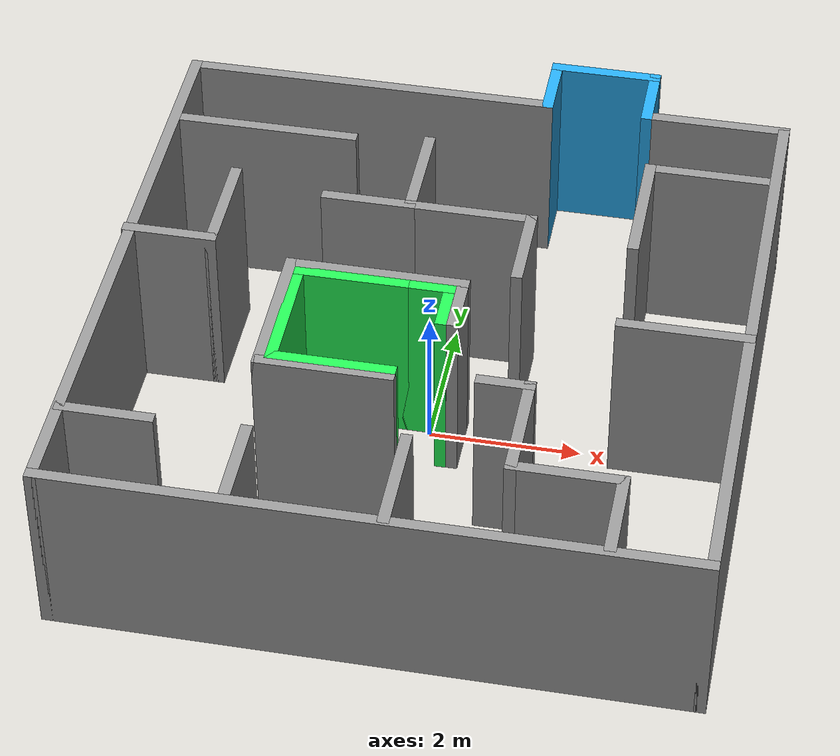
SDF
<?xml version='1.0'?>
<sdf version='1.7'>
  <model name='Floating_room_2'>
    <pose>-0.001612 0.444051 0 0 -0 0</pose>
    <link name='Wall_0'>
      <collision name='Wall_0_Collision'>
        <geometry>
          <box>
            <size>8.25 0.15 2.5</size>
          </box>
        </geometry>
        <pose>0 0 1.25 0 -0 0</pose>
      </collision>
      <visual name='Wall_0_Visual'>
        <pose>0 0 1.25 0 -0 0</pose>
        <geometry>
          <box>
            <size>8.25 0.15 2.5</size>
          </box>
        </geometry>
        <material>
          <script>
            <uri>file://media/materials/scripts/gazebo.material</uri>
            <name>Gazebo/Grey</name>
          </script>
          <ambient>1 1 1 1</ambient>
        </material>
        <meta>
          <layer>0</layer>
        </meta>
      </visual>
      <pose>-4.03596 -0.425 0 0 -0 -1.5708</pose>
    </link>
    <link name='Wall_1'>
      <collision name='Wall_1_Collision'>
        <geometry>
          <box>
            <size>8.25 0.15 2.5</size>
          </box>
        </geometry>
        <pose>0 0 1.25 0 -0 0</pose>
      </collision>
      <visual name='Wall_1_Visual'>
        <pose>0 0 1.25 0 -0 0</pose>
        <geometry>
          <box>
            <size>8.25 0.15 2.5</size>
          </box>
        </geometry>
        <material>
          <script>
            <uri>file://media/materials/scripts/gazebo.material</uri>
            <name>Gazebo/Grey</name>
          </script>
          <ambient>1 1 1 1</ambient>
        </material>
        <meta>
          <layer>0</layer>
        </meta>
      </visual>
      <pose>0.014044 -4.475 0 0 -0 0</pose>
    </link>
    <link name='Wall_10'>
      <collision name='Wall_10_Collision'>
        <geometry>
          <box>
            <size>1.75 0.15 2.5</size>
          </box>
        </geometry>
        <pose>0 0 1.25 0 -0 0</pose>
      </collision>
      <visual name='Wall_10_Visual'>
        <pose>0 0 1.25 0 -0 0</pose>
        <geometry>
          <box>
            <size>1.75 0.15 2.5</size>
          </box>
        </geometry>
        <material>
          <script>
            <uri>file://media/materials/scripts/gazebo.material</uri>
            <name>Gazebo/Grey</name>
          </script>
          <ambient>1 1 1 1</ambient>
        </material>
        <meta>
          <layer>0</layer>
        </meta>
      </visual>
      <pose>2.40321 1.72963 0 0 -0 -1.5708</pose>
    </link>
    <link name='Wall_12'>
      <collision name='Wall_12_Collision'>
        <geometry>
          <box>
            <size>1.75 0.15 2.5</size>
          </box>
        </geometry>
        <pose>0 0 1.25 0 -0 0</pose>
      </collision>
      <visual name='Wall_12_Visual'>
        <pose>0 0 1.25 0 -0 0</pose>
        <geometry>
          <box>
            <size>1.75 0.15 2.5</size>
          </box>
        </geometry>
        <material>
          <script>
            <uri>file://media/materials/scripts/gazebo.material</uri>
            <name>Gazebo/Grey</name>
          </script>
          <ambient>1 1 1 1</ambient>
        </material>
        <meta>
          <layer>0</layer>
        </meta>
      </visual>
      <pose>3.25611 -0.565019 0 0 -0 3.14159</pose>
    </link>
    <link name='Wall_14'>
      <collision name='Wall_14_Collision'>
        <geometry>
          <box>
            <size>1.5 0.15 2.5</size>
          </box>
        </geometry>
        <pose>0 0 1.25 0 -0 0</pose>
      </collision>
      <visual name='Wall_14_Visual'>
        <pose>0 0 1.25 0 -0 0</pose>
        <geometry>
          <box>
            <size>1.5 0.15 2.5</size>
          </box>
        </geometry>
        <material>
          <script>
            <uri>file://media/materials/scripts/gazebo.material</uri>
            <name>Gazebo/Grey</name>
          </script>
          <ambient>1 1 1 1</ambient>
        </material>
        <meta>
          <layer>0</layer>
        </meta>
      </visual>
      <pose>2.19086 -3.30259 0 0 -0 3.14159</pose>
    </link>
    <link name='Wall_16'>
      <collision name='Wall_16_Collision'>
        <geometry>
          <box>
            <size>1.25 0.15 2.5</size>
          </box>
        </geometry>
        <pose>0 0 1.25 0 -0 0</pose>
      </collision>
      <visual name='Wall_16_Visual'>
        <pose>0 0 1.25 0 -0 0</pose>
        <geometry>
          <box>
            <size>1.25 0.15 2.5</size>
          </box>
        </geometry>
        <material>
          <script>
            <uri>file://media/materials/scripts/gazebo.material</uri>
            <name>Gazebo/Grey</name>
          </script>
          <ambient>1 1 1 1</ambient>
        </material>
        <meta>
          <layer>0</layer>
        </meta>
      </visual>
      <pose>2.86586 -3.85259 0 0 -0 -1.5708</pose>
    </link>
    <link name='Wall_2'>
      <collision name='Wall_2_Collision'>
        <geometry>
          <box>
            <size>8.25 0.15 2.5</size>
          </box>
        </geometry>
        <pose>0 0 1.25 0 -0 0</pose>
      </collision>
      <visual name='Wall_2_Visual'>
        <pose>0 0 1.25 0 -0 0</pose>
        <geometry>
          <box>
            <size>8.25 0.15 2.5</size>
          </box>
        </geometry>
        <material>
          <script>
            <uri>file://media/materials/scripts/gazebo.material</uri>
            <name>Gazebo/Grey</name>
          </script>
          <ambient>1 1 1 1</ambient>
        </material>
        <meta>
          <layer>0</layer>
        </meta>
      </visual>
      <pose>4.06404 -0.425 0 0 -0 1.5708</pose>
    </link>
    <link name='Wall_20'>
      <collision name='Wall_20_Collision'>
        <geometry>
          <box>
            <size>1.25 0.15 2.5</size>
          </box>
        </geometry>
        <pose>0 0 1.25 0 -0 0</pose>
      </collision>
      <visual name='Wall_20_Visual'>
        <pose>0 0 1.25 0 -0 0</pose>
        <geometry>
          <box>
            <size>1.25 0.15 2.5</size>
          </box>
        </geometry>
        <material>
          <script>
            <uri>file://media/materials/scripts/gazebo.material</uri>
            <name>Gazebo/Grey</name>
          </script>
          <ambient>1 1 1 1</ambient>
        </material>
        <meta>
          <layer>0</layer>
        </meta>
      </visual>
      <pose>-3.46114 -3.30259 0 0 -0 0</pose>
    </link>
    <link name='Wall_22'>
      <collision name='Wall_22_Collision'>
        <geometry>
          <box>
            <size>1.25 0.15 2.5</size>
          </box>
        </geometry>
        <pose>0 0 1.25 0 -0 0</pose>
      </collision>
      <visual name='Wall_22_Visual'>
        <pose>0 0 1.25 0 -0 0</pose>
        <geometry>
          <box>
            <size>1.25 0.15 2.5</size>
          </box>
        </geometry>
        <material>
          <script>
            <uri>file://media/materials/scripts/gazebo.material</uri>
            <name>Gazebo/Grey</name>
          </script>
          <ambient>1 1 1 1</ambient>
        </material>
        <meta>
          <layer>0</layer>
        </meta>
      </visual>
      <pose>-1.70999 -3.83937 0 0 -0 -1.5708</pose>
    </link>
    <link name='Wall_24'>
      <collision name='Wall_24_Collision'>
        <geometry>
          <box>
            <size>1.25 0.15 2.5</size>
          </box>
        </geometry>
        <pose>0 0 1.25 0 -0 0</pose>
      </collision>
      <visual name='Wall_24_Visual'>
        <pose>0 0 1.25 0 -0 0</pose>
        <geometry>
          <box>
            <size>1.25 0.15 2.5</size>
          </box>
        </geometry>
        <material>
          <script>
            <uri>file://media/materials/scripts/gazebo.material</uri>
            <name>Gazebo/Grey</name>
          </script>
          <ambient>1 1 1 1</ambient>
        </material>
        <meta>
          <layer>0</layer>
        </meta>
      </visual>
      <pose>-3.51404 0.096231 0 0 -0 0</pose>
    </link>
    <link name='Wall_25'>
      <collision name='Wall_25_Collision'>
        <geometry>
          <box>
            <size>1.5 0.15 2.5</size>
          </box>
        </geometry>
        <pose>0 0 1.25 0 -0 0</pose>
      </collision>
      <visual name='Wall_25_Visual'>
        <pose>0 0 1.25 0 -0 0</pose>
        <geometry>
          <box>
            <size>1.5 0.15 2.5</size>
          </box>
        </geometry>
        <material>
          <script>
            <uri>file://media/materials/scripts/gazebo.material</uri>
            <name>Gazebo/Grey</name>
          </script>
          <ambient>1 1 1 1</ambient>
        </material>
        <meta>
          <layer>0</layer>
        </meta>
      </visual>
      <pose>-2.96404 0.771231 0 0 -0 1.5708</pose>
    </link>
    <link name='Wall_27'>
      <collision name='Wall_27_Collision'>
        <geometry>
          <box>
            <size>2.5 0.15 2.5</size>
          </box>
        </geometry>
        <pose>0 0 1.25 0 -0 0</pose>
      </collision>
      <visual name='Wall_27_Visual'>
        <pose>0 0 1.25 0 -0 0</pose>
        <geometry>
          <box>
            <size>2.5 0.15 2.5</size>
          </box>
        </geometry>
        <material>
          <script>
            <uri>file://media/materials/scripts/gazebo.material</uri>
            <name>Gazebo/Grey</name>
          </script>
          <ambient>1 1 1 1</ambient>
        </material>
        <meta>
          <layer>0</layer>
        </meta>
      </visual>
      <pose>-2.78324 2.45028 0 0 -0 0</pose>
    </link>
    <link name='Wall_3'>
      <collision name='Wall_3_Collision'>
        <geometry>
          <box>
            <size>2 0.15 2.5</size>
          </box>
        </geometry>
        <pose>0 0 1.25 0 -0 0</pose>
      </collision>
      <visual name='Wall_3_Visual'>
        <pose>0 0 1.25 0 -0 0</pose>
        <geometry>
          <box>
            <size>2 0.15 2.5</size>
          </box>
        </geometry>
        <material>
          <script>
            <uri>file://media/materials/scripts/gazebo.material</uri>
            <name>Gazebo/Grey</name>
          </script>
          <ambient>1 1 1 1</ambient>
        </material>
        <meta>
          <layer>0</layer>
        </meta>
      </visual>
      <pose>3.13904 3.625 0 0 -0 3.14159</pose>
    </link>
    <link name='Wall_36'>
      <collision name='Wall_36_Collision'>
        <geometry>
          <box>
            <size>1.5 0.15 2.5</size>
          </box>
        </geometry>
        <pose>0 0 1.25 0 -0 0</pose>
      </collision>
      <visual name='Wall_36_Visual'>
        <pose>0 0 1.25 0 -0 0</pose>
        <geometry>
          <box>
            <size>1.5 0.15 2.5</size>
          </box>
        </geometry>
        <material>
          <script>
            <uri>file://media/materials/scripts/gazebo.material</uri>
            <name>Gazebo/Grey</name>
          </script>
          <ambient>1 1 1 1</ambient>
        </material>
        <meta>
          <layer>0</layer>
        </meta>
      </visual>
      <pose>-0.572644 1.88108 0 0 -0 -1.5708</pose>
    </link>
    <link name='Wall_37'>
      <collision name='Wall_37_Collision'>
        <geometry>
          <box>
            <size>1.75 0.15 2.5</size>
          </box>
        </geometry>
        <pose>0 0 1.25 0 -0 0</pose>
      </collision>
      <visual name='Wall_37_Visual'>
        <pose>0 0 1.25 0 -0 0</pose>
        <geometry>
          <box>
            <size>1.75 0.15 2.5</size>
          </box>
        </geometry>
        <material>
          <script>
            <uri>file://media/materials/scripts/gazebo.material</uri>
            <name>Gazebo/Grey</name>
          </script>
          <ambient>1 1 1 1</ambient>
        </material>
        <meta>
          <layer>0</layer>
        </meta>
      </visual>
      <pose>0.227356 1.20608 0 0 -0 0</pose>
    </link>
    <link name='Wall_38'>
      <collision name='Wall_38_Collision'>
        <geometry>
          <box>
            <size>1.25 0.15 2.5</size>
          </box>
        </geometry>
        <pose>0 0 1.25 0 -0 0</pose>
      </collision>
      <visual name='Wall_38_Visual'>
        <pose>0 0 1.25 0 -0 0</pose>
        <geometry>
          <box>
            <size>1.25 0.15 2.5</size>
          </box>
        </geometry>
        <material>
          <script>
            <uri>file://media/materials/scripts/gazebo.material</uri>
            <name>Gazebo/Grey</name>
          </script>
          <ambient>1 1 1 1</ambient>
        </material>
        <meta>
          <layer>0</layer>
        </meta>
      </visual>
      <pose>1.02736 0.656081 0 0 -0 -1.5708</pose>
    </link>
    <link name='Wall_4'>
      <collision name='Wall_4_Collision'>
        <geometry>
          <box>
            <size>1 0.15 2.5</size>
          </box>
        </geometry>
        <pose>0 0 1.25 0 -0 0</pose>
      </collision>
      <visual name='Wall_4_Visual'>
        <pose>0 0 1.25 0 -0 0</pose>
        <geometry>
          <box>
            <size>1 0.15 2.5</size>
          </box>
        </geometry>
        <material>
          <script>
            <uri>file://media/materials/scripts/gazebo.material</uri>
            <name>Gazebo/Grey</name>
          </script>
          <ambient>0.152941 0.67451 0.945098 1</ambient>
        </material>
        <meta>
          <layer>0</layer>
        </meta>
      </visual>
      <pose>2.21404 4.05 0 0 -0 1.5708</pose>
    </link>
    <link name='Wall_40'>
      <collision name='Wall_40_Collision'>
        <geometry>
          <box>
            <size>1.25 0.15 2.5</size>
          </box>
        </geometry>
        <pose>0 0 1.25 0 -0 0</pose>
      </collision>
      <visual name='Wall_40_Visual'>
        <pose>0 0 1.25 0 -0 0</pose>
        <geometry>
          <box>
            <size>1.25 0.15 2.5</size>
          </box>
        </geometry>
        <material>
          <script>
            <uri>file://media/materials/scripts/gazebo.material</uri>
            <name>Gazebo/Grey</name>
          </script>
          <ambient>1 1 1 1</ambient>
        </material>
        <meta>
          <layer>0</layer>
        </meta>
      </visual>
      <pose>-1.12264 1.20608 0 0 -0 3.14159</pose>
    </link>
    <link name='Wall_45'>
      <collision name='Wall_45_Collision'>
        <geometry>
          <box>
            <size>1.5 0.15 2.5</size>
          </box>
        </geometry>
        <pose>0 0 1.25 0 -0 0</pose>
      </collision>
      <visual name='Wall_45_Visual'>
        <pose>0 0 1.25 0 -0 0</pose>
        <geometry>
          <box>
            <size>1.5 0.15 2.5</size>
          </box>
        </geometry>
        <material>
          <script>
            <uri>file://media/materials/scripts/gazebo.material</uri>
            <name>Gazebo/Grey</name>
          </script>
          <ambient>0.145098 0.976471 0.337255 1</ambient>
        </material>
        <meta>
          <layer>0</layer>
        </meta>
      </visual>
      <pose>-1.03499 -0.340194 0 0 -0 0</pose>
    </link>
    <link name='Wall_5'>
      <collision name='Wall_5_Collision'>
        <geometry>
          <box>
            <size>1.5 0.15 2.5</size>
          </box>
        </geometry>
        <pose>0 0 1.25 0 -0 0</pose>
      </collision>
      <visual name='Wall_5_Visual'>
        <pose>0 0 1.25 0 -0 0</pose>
        <geometry>
          <box>
            <size>1.5 0.15 2.5</size>
          </box>
        </geometry>
        <material>
          <script>
            <uri>file://media/materials/scripts/gazebo.material</uri>
            <name>Gazebo/Grey</name>
          </script>
          <ambient>0.152941 0.67451 0.945098 1</ambient>
        </material>
        <meta>
          <layer>0</layer>
        </meta>
      </visual>
      <pose>1.53904 4.475 0 0 -0 3.14159</pose>
    </link>
    <link name='Wall_50'>
      <collision name='Wall_50_Collision'>
        <geometry>
          <box>
            <size>1.75 0.15 2.5</size>
          </box>
        </geometry>
        <pose>0 0 1.25 0 -0 0</pose>
      </collision>
      <visual name='Wall_50_Visual'>
        <pose>0 0 1.25 0 -0 0</pose>
        <geometry>
          <box>
            <size>1.75 0.15 2.5</size>
          </box>
        </geometry>
        <material>
          <script>
            <uri>file://media/materials/scripts/gazebo.material</uri>
            <name>Gazebo/Grey</name>
          </script>
          <ambient>0.145098 0.976471 0.337255 1</ambient>
        </material>
        <meta>
          <layer>0</layer>
        </meta>
      </visual>
      <pose>-1.70999 -1.14019 0 0 -0 -1.5708</pose>
    </link>
    <link name='Wall_51'>
      <collision name='Wall_51_Collision'>
        <geometry>
          <box>
            <size>1.65 0.15 2.5</size>
          </box>
        </geometry>
        <pose>0 0 1.25 0 -0 0</pose>
      </collision>
      <visual name='Wall_51_Visual'>
        <pose>0 0 1.25 0 -0 0</pose>
        <geometry>
          <box>
            <size>1.65 0.15 2.5</size>
          </box>
        </geometry>
        <material>
          <script>
            <uri>file://media/materials/scripts/gazebo.material</uri>
            <name>Gazebo/Grey</name>
          </script>
          <ambient>0.145098 0.976471 0.337255 1</ambient>
        </material>
        <meta>
          <layer>0</layer>
        </meta>
      </visual>
      <pose>-0.959994 -1.94019 0 0 -0 0</pose>
    </link>
    <link name='Wall_53'>
      <collision name='Wall_53_Collision'>
        <geometry>
          <box>
            <size>0.75 0.15 2.5</size>
          </box>
        </geometry>
        <pose>0 0 1.25 0 -0 0</pose>
      </collision>
      <visual name='Wall_53_Visual'>
        <pose>0 0 1.25 0 -0 0</pose>
        <geometry>
          <box>
            <size>0.75 0.15 2.5</size>
          </box>
        </geometry>
        <material>
          <script>
            <uri>file://media/materials/scripts/gazebo.material</uri>
            <name>Gazebo/Grey</name>
          </script>
          <ambient>0.145098 0.976471 0.337255 1</ambient>
        </material>
        <meta>
          <layer>0</layer>
        </meta>
      </visual>
      <pose>-0.059994 -0.340194 0 0 -0 0</pose>
    </link>
    <link name='Wall_54'>
      <collision name='Wall_54_Collision'>
        <geometry>
          <box>
            <size>0.75 0.15 2.5</size>
          </box>
        </geometry>
        <pose>0 0 1.25 0 -0 0</pose>
      </collision>
      <visual name='Wall_54_Visual'>
        <pose>0 0 1.25 0 -0 0</pose>
        <geometry>
          <box>
            <size>0.75 0.15 2.5</size>
          </box>
        </geometry>
        <material>
          <script>
            <uri>file://media/materials/scripts/gazebo.material</uri>
            <name>Gazebo/Grey</name>
          </script>
          <ambient>0.145098 0.976471 0.337255 1</ambient>
        </material>
        <meta>
          <layer>0</layer>
        </meta>
      </visual>
      <pose>0.240006 -0.640194 0 0 -0 -1.5708</pose>
    </link>
    <link name='Wall_56'>
      <collision name='Wall_56_Collision'>
        <geometry>
          <box>
            <size>1.55 0.15 2.5</size>
          </box>
        </geometry>
        <pose>0 0 1.25 0 -0 0</pose>
      </collision>
      <visual name='Wall_56_Visual'>
        <pose>0 0 1.25 0 -0 0</pose>
        <geometry>
          <box>
            <size>1.55 0.15 2.5</size>
          </box>
        </geometry>
        <material>
          <script>
            <uri>file://media/materials/scripts/gazebo.material</uri>
            <name>Gazebo/Grey</name>
          </script>
          <ambient>1 1 1 1</ambient>
        </material>
        <meta>
          <layer>0</layer>
        </meta>
      </visual>
      <pose>1.51586 -2.60259 0 0 -0 1.5708</pose>
    </link>
    <link name='Wall_57'>
      <collision name='Wall_57_Collision'>
        <geometry>
          <box>
            <size>0.75 0.15 2.5</size>
          </box>
        </geometry>
        <pose>0 0 1.25 0 -0 0</pose>
      </collision>
      <visual name='Wall_57_Visual'>
        <pose>0 0 1.25 0 -0 0</pose>
        <geometry>
          <box>
            <size>0.75 0.15 2.5</size>
          </box>
        </geometry>
        <material>
          <script>
            <uri>file://media/materials/scripts/gazebo.material</uri>
            <name>Gazebo/Grey</name>
          </script>
          <ambient>1 1 1 1</ambient>
        </material>
        <meta>
          <layer>0</layer>
        </meta>
      </visual>
      <pose>1.21586 -1.90259 0 0 -0 3.14159</pose>
    </link>
    <link name='Wall_59'>
      <collision name='Wall_59_Collision'>
        <geometry>
          <box>
            <size>1.5 0.15 2.5</size>
          </box>
        </geometry>
        <pose>0 0 1.25 0 -0 0</pose>
      </collision>
      <visual name='Wall_59_Visual'>
        <pose>0 0 1.25 0 -0 0</pose>
        <geometry>
          <box>
            <size>1.5 0.15 2.5</size>
          </box>
        </geometry>
        <material>
          <script>
            <uri>file://media/materials/scripts/gazebo.material</uri>
            <name>Gazebo/Grey</name>
          </script>
          <ambient>1 1 1 1</ambient>
        </material>
        <meta>
          <layer>0</layer>
        </meta>
      </visual>
      <pose>0.207631 -3.76494 0 0 -0 1.5708</pose>
    </link>
    <link name='Wall_6'>
      <collision name='Wall_6_Collision'>
        <geometry>
          <box>
            <size>1 0.15 2.5</size>
          </box>
        </geometry>
        <pose>0 0 1.25 0 -0 0</pose>
      </collision>
      <visual name='Wall_6_Visual'>
        <pose>0 0 1.25 0 -0 0</pose>
        <geometry>
          <box>
            <size>1 0.15 2.5</size>
          </box>
        </geometry>
        <material>
          <script>
            <uri>file://media/materials/scripts/gazebo.material</uri>
            <name>Gazebo/Grey</name>
          </script>
          <ambient>0.152941 0.67451 0.945098 1</ambient>
        </material>
        <meta>
          <layer>0</layer>
        </meta>
      </visual>
      <pose>0.864044 4.05 0 0 -0 -1.5708</pose>
    </link>
    <link name='Wall_64'>
      <collision name='Wall_64_Collision'>
        <geometry>
          <box>
            <size>0.75 0.15 2.5</size>
          </box>
        </geometry>
        <pose>0 0 1.25 0 -0 0</pose>
      </collision>
      <visual name='Wall_64_Visual'>
        <pose>0 0 1.25 0 -0 0</pose>
        <geometry>
          <box>
            <size>0.75 0.15 2.5</size>
          </box>
        </geometry>
        <material>
          <script>
            <uri>file://media/materials/scripts/gazebo.material</uri>
            <name>Gazebo/Grey</name>
          </script>
          <ambient>1 1 1 1</ambient>
        </material>
        <meta>
          <layer>0</layer>
        </meta>
      </visual>
      <pose>0.390159 -0.635088 0 0 -0 1.5708</pose>
    </link>
    <link name='Wall_66'>
      <collision name='Wall_66_Collision'>
        <geometry>
          <box>
            <size>2.25 0.15 2.5</size>
          </box>
        </geometry>
        <pose>0 0 1.25 0 -0 0</pose>
      </collision>
      <visual name='Wall_66_Visual'>
        <pose>0 0 1.25 0 -0 0</pose>
        <geometry>
          <box>
            <size>2.25 0.15 2.5</size>
          </box>
        </geometry>
        <material>
          <script>
            <uri>file://media/materials/scripts/gazebo.material</uri>
            <name>Gazebo/Grey</name>
          </script>
          <ambient>1 1 1 1</ambient>
        </material>
        <meta>
          <layer>0</layer>
        </meta>
      </visual>
      <pose>-0.659841 -0.199266 0 0 -0 3.14159</pose>
    </link>
    <link name='Wall_68'>
      <collision name='Wall_68_Collision'>
        <geometry>
          <box>
            <size>2 0.15 2.5</size>
          </box>
        </geometry>
        <pose>0 0 1.25 0 -0 0</pose>
      </collision>
      <visual name='Wall_68_Visual'>
        <pose>0 0 1.25 0 -0 0</pose>
        <geometry>
          <box>
            <size>2 0.15 2.5</size>
          </box>
        </geometry>
        <material>
          <script>
            <uri>file://media/materials/scripts/gazebo.material</uri>
            <name>Gazebo/Grey</name>
          </script>
          <ambient>1 1 1 1</ambient>
        </material>
        <meta>
          <layer>0</layer>
        </meta>
      </visual>
      <pose>-1.84714 -1.12427 0 0 -0 -1.5708</pose>
    </link>
    <link name='Wall_7'>
      <collision name='Wall_7_Collision'>
        <geometry>
          <box>
            <size>5.05 0.15 2.5</size>
          </box>
        </geometry>
        <pose>0 0 1.25 0 -0 0</pose>
      </collision>
      <visual name='Wall_7_Visual'>
        <pose>0 0 1.25 0 -0 0</pose>
        <geometry>
          <box>
            <size>5.05 0.15 2.5</size>
          </box>
        </geometry>
        <material>
          <script>
            <uri>file://media/materials/scripts/gazebo.material</uri>
            <name>Gazebo/Grey</name>
          </script>
          <ambient>1 1 1 1</ambient>
        </material>
        <meta>
          <layer>0</layer>
        </meta>
      </visual>
      <pose>-1.58596 3.625 0 0 -0 3.14159</pose>
    </link>
    <link name='Wall_71'>
      <collision name='Wall_71_Collision'>
        <geometry>
          <box>
            <size>1.79 0.15 2.5</size>
          </box>
        </geometry>
        <pose>0 0 1.25 0 -0 0</pose>
      </collision>
      <visual name='Wall_71_Visual'>
        <pose>0 0 1.25 0 -0 0</pose>
        <geometry>
          <box>
            <size>1.79 0.15 2.5</size>
          </box>
        </geometry>
        <material>
          <script>
            <uri>file://media/materials/scripts/gazebo.material</uri>
            <name>Gazebo/Grey</name>
          </script>
          <ambient>1 1 1 1</ambient>
        </material>
        <meta>
          <layer>0</layer>
        </meta>
      </visual>
      <pose>-1.02714 -2.04927 0 0 -0 0</pose>
    </link>
    <link name='Wall_9'>
      <collision name='Wall_9_Collision'>
        <geometry>
          <box>
            <size>1.75 0.15 2.5</size>
          </box>
        </geometry>
        <pose>0 0 1.25 0 -0 0</pose>
      </collision>
      <visual name='Wall_9_Visual'>
        <pose>0 0 1.25 0 -0 0</pose>
        <geometry>
          <box>
            <size>1.75 0.15 2.5</size>
          </box>
        </geometry>
        <material>
          <script>
            <uri>file://media/materials/scripts/gazebo.material</uri>
            <name>Gazebo/Grey</name>
          </script>
          <ambient>1 1 1 1</ambient>
        </material>
        <meta>
          <layer>0</layer>
        </meta>
      </visual>
      <pose>3.20321 2.52963 0 0 -0 3.14159</pose>
    </link>
    <static>1</static>
  </model>
</sdf>
